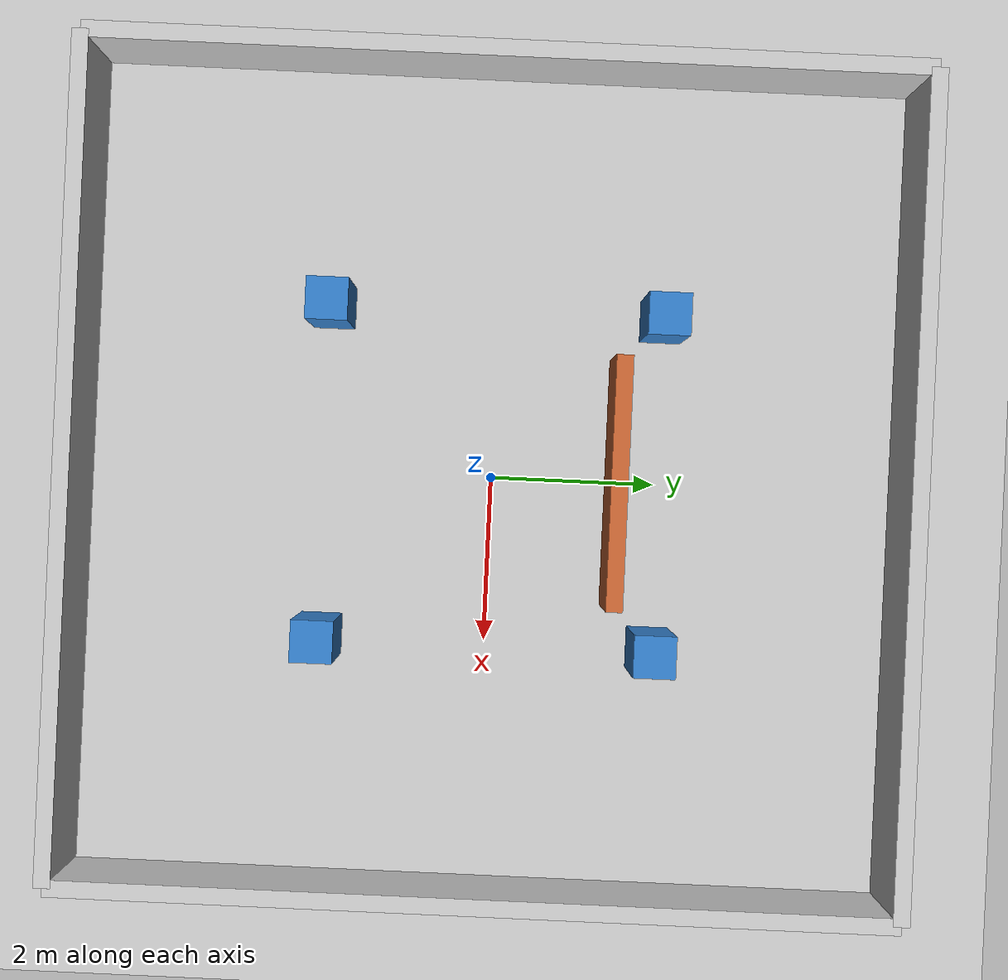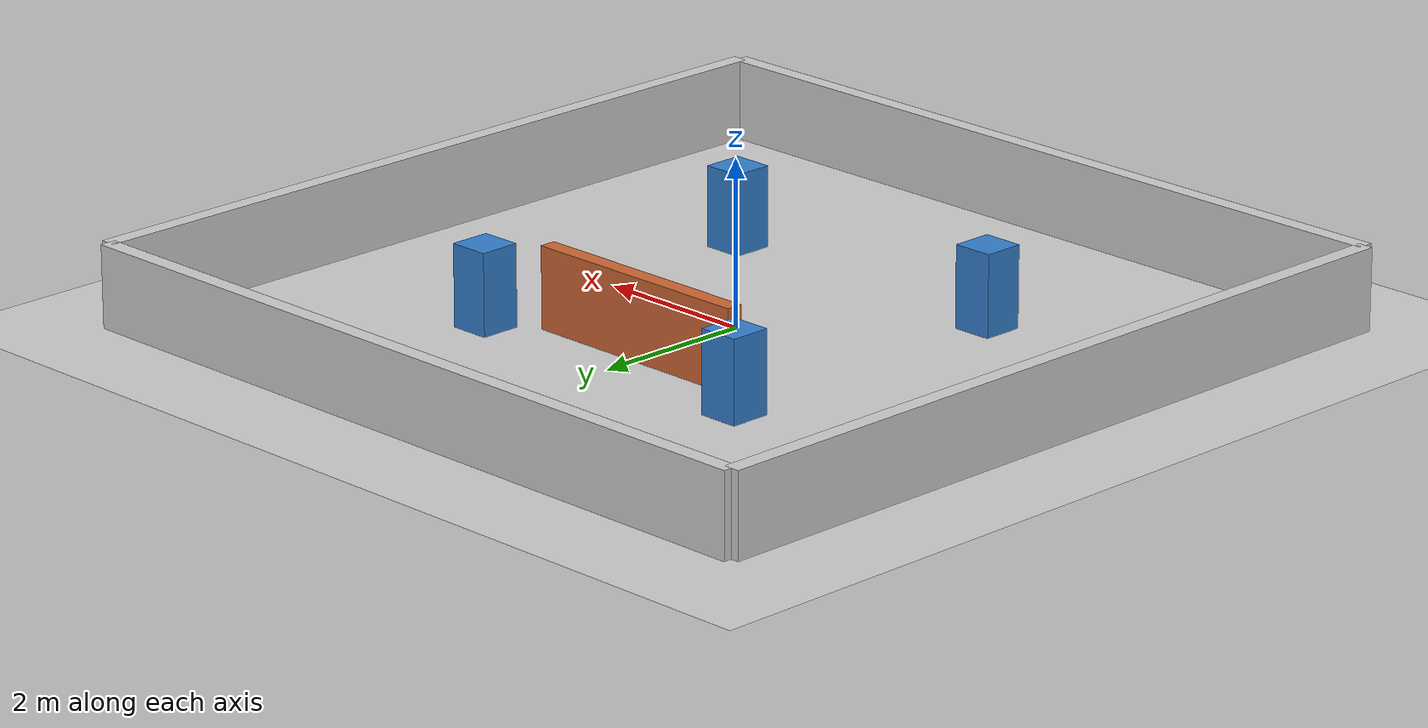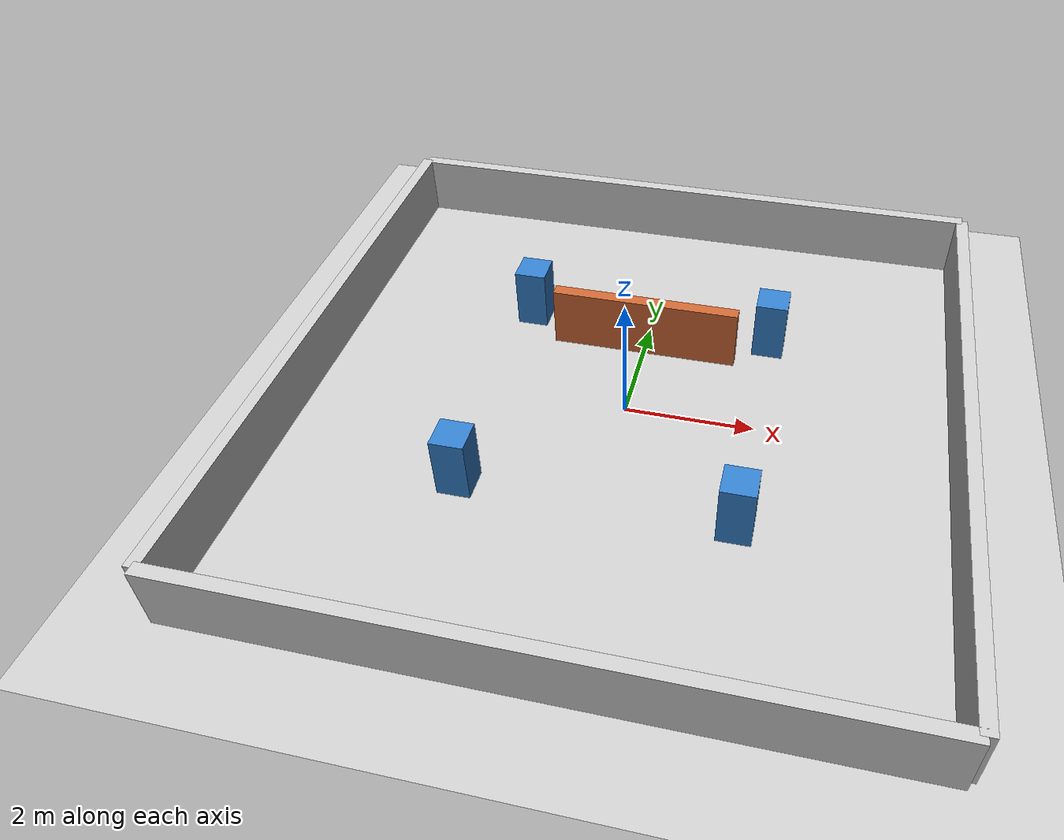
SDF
<?xml version="1.0"?>
<sdf version="1.6">
  <world name="room">
    <include><uri>model://sun</uri></include>
    <include><uri>model://ground_plane</uri></include>
    <physics type="ode">
      <real_time_update_rate>1000</real_time_update_rate>
      <max_step_size>0.001</max_step_size>
      <real_time_factor>1</real_time_factor>
    </physics>

    <!-- Outer walls -->
    <model name="wall_north"><static>true</static><pose>0 5 0.5 0 0 0</pose>
      <link name="link">
        <collision name="col"><geometry><box><size>10 0.2 1</size></box></geometry></collision>
        <visual name="vis"><geometry><box><size>10 0.2 1</size></box></geometry>
        <material><ambient>0.8 0.8 0.8 1</ambient></material></visual>
      </link></model>

    <model name="wall_south"><static>true</static><pose>0 -5 0.5 0 0 0</pose>
      <link name="link">
        <collision name="col"><geometry><box><size>10 0.2 1</size></box></geometry></collision>
        <visual name="vis"><geometry><box><size>10 0.2 1</size></box></geometry>
        <material><ambient>0.8 0.8 0.8 1</ambient></material></visual>
      </link></model>

    <model name="wall_east"><static>true</static><pose>5 0 0.5 0 0 0</pose>
      <link name="link">
        <collision name="col"><geometry><box><size>0.2 10 1</size></box></geometry></collision>
        <visual name="vis"><geometry><box><size>0.2 10 1</size></box></geometry>
        <material><ambient>0.8 0.8 0.8 1</ambient></material></visual>
      </link></model>

    <model name="wall_west"><static>true</static><pose>-5 0 0.5 0 0 0</pose>
      <link name="link">
        <collision name="col"><geometry><box><size>0.2 10 1</size></box></geometry></collision>
        <visual name="vis"><geometry><box><size>0.2 10 1</size></box></geometry>
        <material><ambient>0.8 0.8 0.8 1</ambient></material></visual>
      </link></model>

    <!-- Interior pillars -->
    <model name="pillar_1"><static>true</static><pose>2 2 0.5 0 0 0</pose>
      <link name="link">
        <collision name="col"><geometry><box><size>0.5 0.5 1</size></box></geometry></collision>
        <visual name="vis"><geometry><box><size>0.5 0.5 1</size></box></geometry>
        <material><ambient>0.2 0.5 0.8 1</ambient></material></visual>
      </link></model>

    <model name="pillar_2"><static>true</static><pose>-2 2 0.5 0 0 0</pose>
      <link name="link">
        <collision name="col"><geometry><box><size>0.5 0.5 1</size></box></geometry></collision>
        <visual name="vis"><geometry><box><size>0.5 0.5 1</size></box></geometry>
        <material><ambient>0.2 0.5 0.8 1</ambient></material></visual>
      </link></model>

    <model name="pillar_3"><static>true</static><pose>2 -2 0.5 0 0 0</pose>
      <link name="link">
        <collision name="col"><geometry><box><size>0.5 0.5 1</size></box></geometry></collision>
        <visual name="vis"><geometry><box><size>0.5 0.5 1</size></box></geometry>
        <material><ambient>0.2 0.5 0.8 1</ambient></material></visual>
      </link></model>

    <model name="pillar_4"><static>true</static><pose>-2 -2 0.5 0 0 0</pose>
      <link name="link">
        <collision name="col"><geometry><box><size>0.5 0.5 1</size></box></geometry></collision>
        <visual name="vis"><geometry><box><size>0.5 0.5 1</size></box></geometry>
        <material><ambient>0.2 0.5 0.8 1</ambient></material></visual>
      </link></model>

    <model name="divider"><static>true</static><pose>0 1.5 0.5 0 0 0</pose>
      <link name="link">
        <collision name="col"><geometry><box><size>3 0.2 1</size></box></geometry></collision>
        <visual name="vis"><geometry><box><size>3 0.2 1</size></box></geometry>
        <material><ambient>0.8 0.4 0.2 1</ambient></material></visual>
      </link></model>

  </world>
</sdf>
